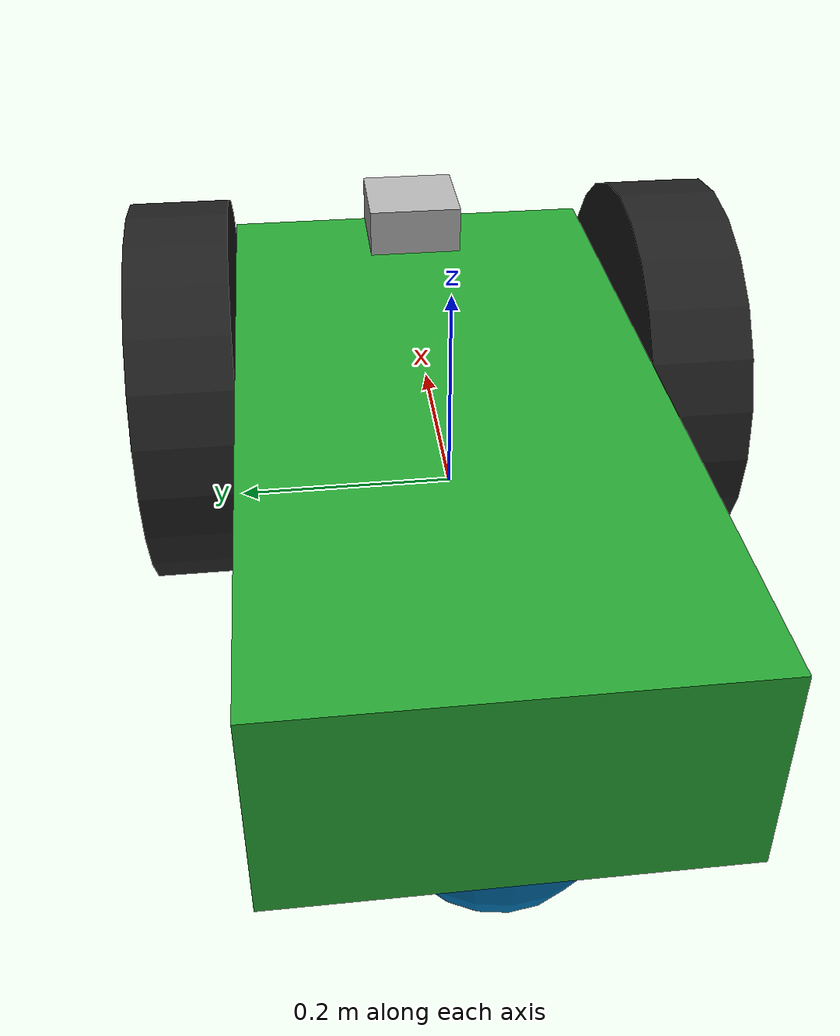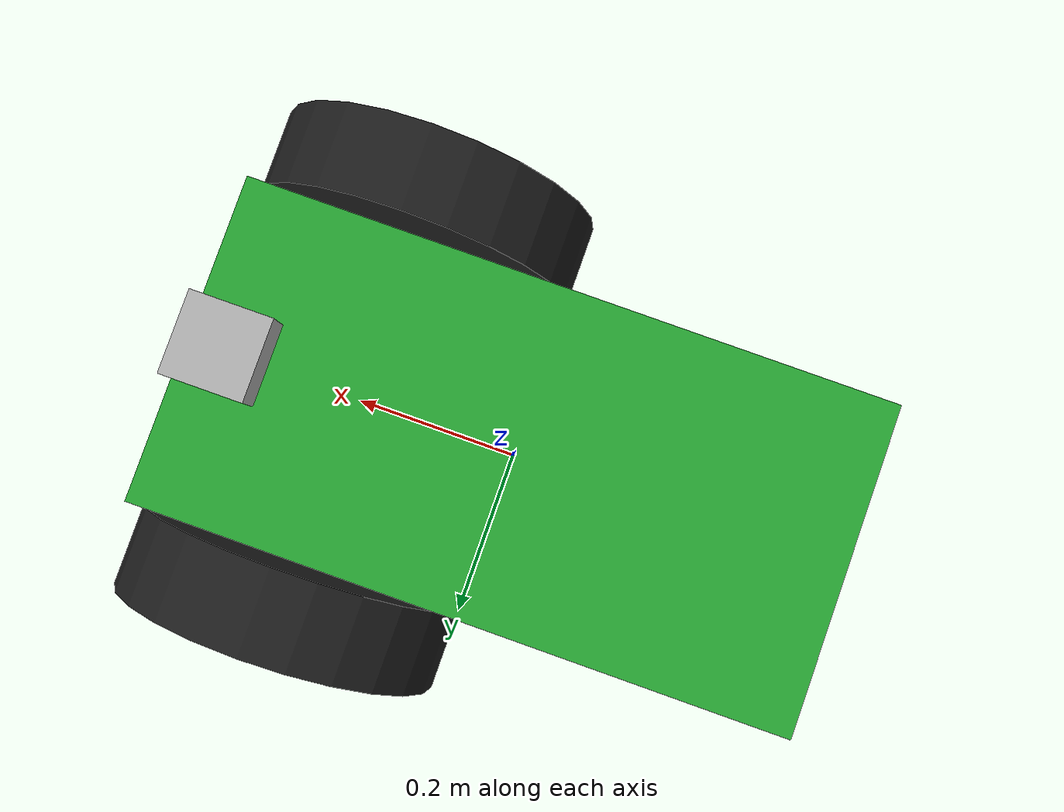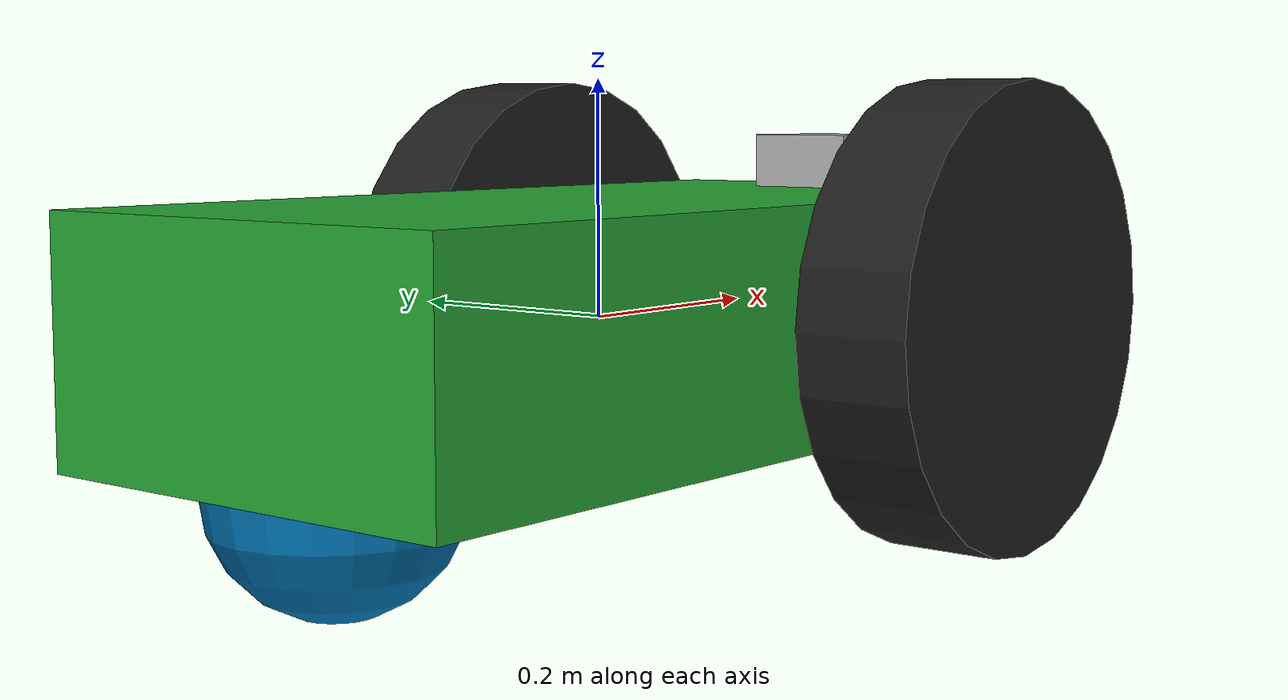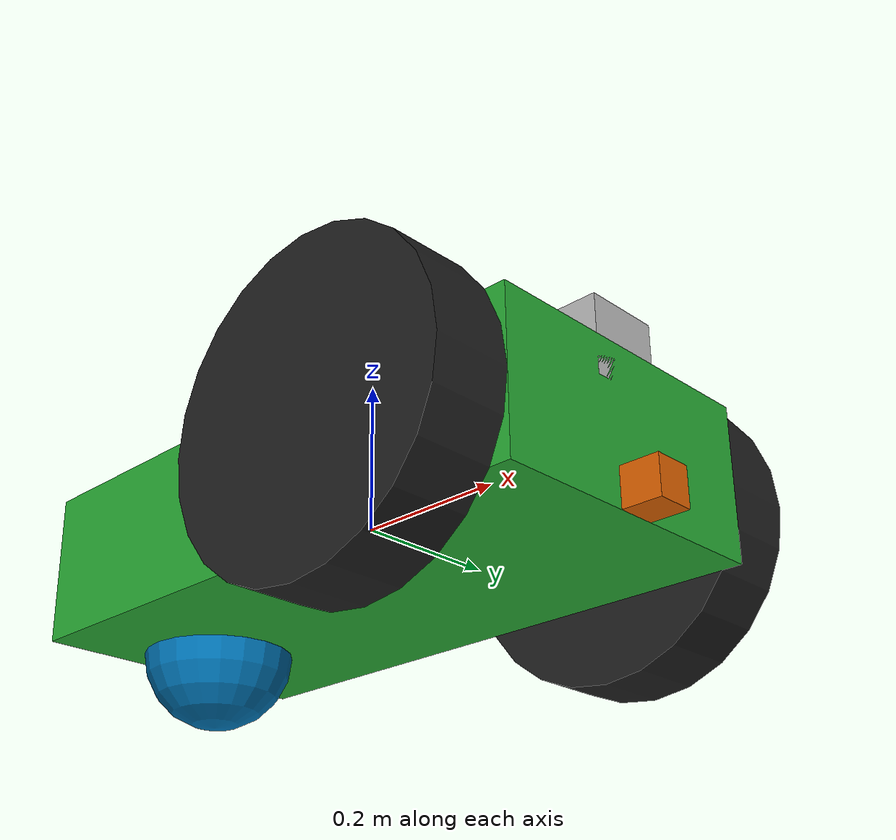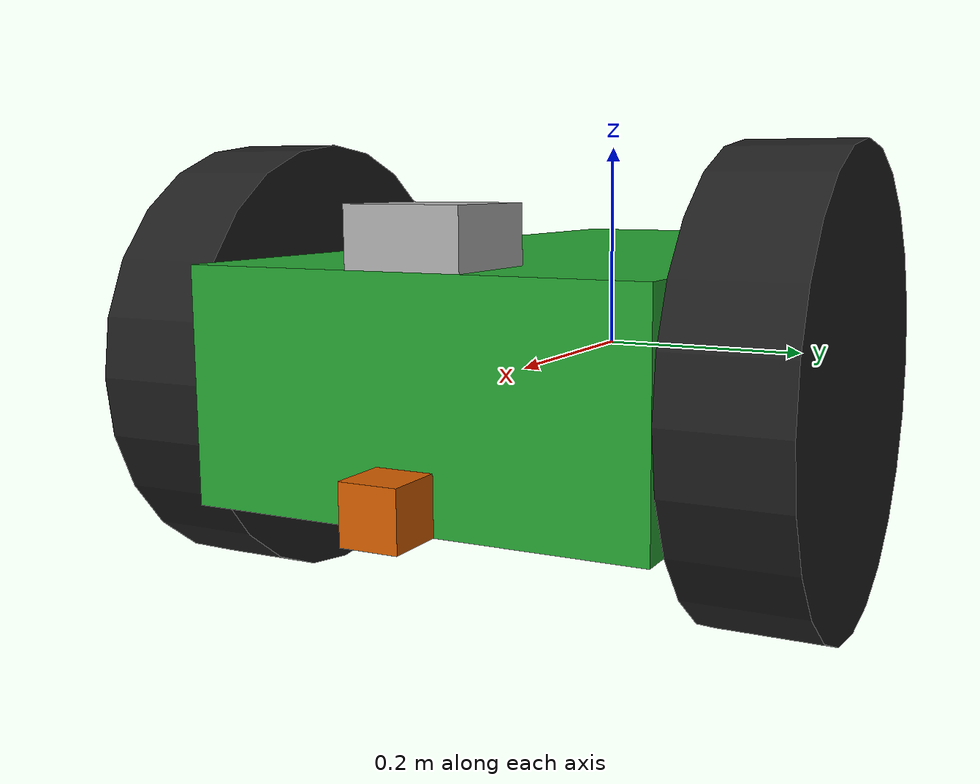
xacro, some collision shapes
<?xml version='1.0'?>

<robot name="my_robot" xmlns:xacro="http://www.ros.org/wiki/xacro">

  <!-- length width height -->
  <xacro:property name="chassis_length" value=".8" />
  <xacro:property name="chassis_width" value=".4" />
  <xacro:property name="chassis_height" value=".2" />

  <xacro:property name="chassis_size" value="${chassis_length} ${chassis_width} ${chassis_height}" />

  <xacro:property name="front_wheel_radius" value=".2" />
  <xacro:property name="front_wheel_thickness" value=".1" />
  <xacro:property name="front_wheel_x" value="${chassis_length/2 - front_wheel_radius}" />

  <xacro:property name="caster_radius" value="${front_wheel_radius - chassis_height/2}" />

  <xacro:macro name="caster_visual">
      <origin xyz="0 0 0" rpy="0 0 0"/>
      <geometry>
        <sphere radius="${caster_radius}" />
      </geometry>
  </xacro:macro>

  <xacro:property name="camera_length" value=".05" />
  <xacro:property name="camera_width" value=".05" />
  <xacro:property name="camera_height" value=".05" />

  <xacro:macro name="camera_visual">
      <origin xyz="0 0 0" rpy="0 0 0"/>
      <geometry>
          <box size="${camera_length} ${camera_width} ${camera_height}"/>
      </geometry>
  </xacro:macro>

  <xacro:include filename="$(find my_robot)/urdf/my_robot.gazebo" />

  <link name="robot_footprint"></link>

  <joint name="robot_footprint_joint" type="fixed">
    <origin xyz="0 0 0" rpy="0 0 0" />
    <parent link="robot_footprint"/>
    <child link="chassis" />
  </joint>

  <link name='chassis'>
    <pose>0 0 0.1 0 0 0</pose>

    <inertial>
      <mass value="15.0"/>
      <origin xyz="0.0 0 0" rpy=" 0 0 0"/>
      <inertia
          ixx="0.1" ixy="0" ixz="0"
          iyy="0.1" iyz="0"
          izz="0.1"
      />
    </inertial>

    <collision name='collision'>
      <origin xyz="0 0 0" rpy="0 0 0"/>
      <geometry>
        <box size="${chassis_size}"/>
      </geometry>
    </collision>

    <visual name='chassis_visual'>
      <origin xyz="0 0 0" rpy=" 0 0 0"/>
      <geometry>
        <box size="${chassis_size}"/>
      </geometry>
    </visual>
  </link>

  <link name="front_left_wheel">
    <inertial>
        <mass value="5"/>
        <origin xyz="0 0 0" rpy="0 1.5707 1.5707"/>
        <inertia
            ixx="0.1" ixy="0" ixz="0"
            iyy="0.1" iyz="0"
            izz="0.1"/>
    </inertial>

    <visual>
        <origin xyz="0 0 0" rpy="0 1.5707 1.5707"/>
        <geometry>
            <cylinder radius="${front_wheel_radius}" length="${front_wheel_thickness}"/>
        </geometry>
    </visual>

    <collision>
        <origin xyz="0 0 0" rpy="0 1.5707 1.5707"/>
        <geometry>
            <cylinder radius="${front_wheel_radius}" length="${front_wheel_thickness}"/>
        </geometry>
    </collision>
  </link>

  <link name="front_right_wheel">
    <inertial>
        <mass value="5"/>
        <origin xyz="0 0 0" rpy="0 1.5707 1.5707"/>
        <inertia
            ixx="0.1" ixy="0" ixz="0"
            iyy="0.1" iyz="0"
            izz="0.1"/>
    </inertial>

    <visual>
        <origin xyz="0 0 0" rpy="0 1.5707 1.5707"/>
        <geometry>
            <cylinder radius="${front_wheel_radius}" length="${front_wheel_thickness}"/>
        </geometry>
    </visual>

    <collision>
        <origin xyz="0 0 0" rpy="0 1.5707 1.5707"/>
        <geometry>
            <cylinder radius="${front_wheel_radius}" length="${front_wheel_thickness}"/>
        </geometry>
    </collision>
  </link>

  <link name="caster">
    <inertial>
        <mass value="0.1"/>
        <origin xyz="0 0 0" rpy="0 0 0 "/>
        <inertia
            ixx="0.1" ixy="0" ixz="0"
            iyy="0.1" iyz="0"
            izz="0.1"/>
    </inertial>

    <visual name='caster_visual'>
      <xacro:caster_visual />
    </visual>

    <collision name='caster_collision'>
      <xacro:caster_visual />
      <surface>
        <friction>
          <ode>
            <mu>0</mu>
            <mu2>0</mu2>
          </ode>
        </friction>
      </surface>
    </collision>
  </link>

  <joint type="continuous" name="front_left_wheel_hinge">
    <origin xyz="${front_wheel_x} ${chassis_width/2 + front_wheel_thickness/2} 0" rpy="0 0 0"/>
    <child link="front_left_wheel"/>
    <parent link="chassis"/>
    <axis xyz="0 1 0" rpy="0 0 0"/>
    <limit effort="10000" velocity="1000"/>
    <dynamics damping="1.0" friction="1.0"/>
  </joint>

  <joint type="continuous" name="front_right_wheel_hinge">
    <origin xyz="${front_wheel_x} ${-(chassis_width/2 + front_wheel_thickness/2)} 0" rpy="0 0 0"/>
    <child link="front_right_wheel"/>
    <parent link="chassis"/>
    <axis xyz="0 1 0" rpy="0 0 0"/>
    <limit effort="10000" velocity="1000"/>
    <dynamics damping="1.0" friction="1.0"/>
  </joint>

  <joint type="fixed" name="caster_joint">
    <origin xyz="${-chassis_length/2 + caster_radius} 0 ${-chassis_height/2}" rpy="0 0 0"/>
    <child link="caster"/>
    <parent link="chassis"/>
  </joint>

  <link name="camera_link">
    <inertial>
        <mass value="0.1"/>
        <origin xyz="0 0 0" rpy="0 0 0"/>
        <inertia
            ixx="1e-6" ixy="0" ixz="0"
            iyy="1e-6" iyz="0" izz="1e-6"/>
        <box_inertia
            m="0.1" x="0.05" y="0.05" z="0.05"/>
    </inertial>

    <visual>
        <xacro:camera_visual />
    </visual>

    <collision>
        <xacro:camera_visual />
    </collision>
  </link>

  <joint type="fixed" name="camera_joint">
    <origin xyz="${chassis_length/2 + camera_length/2} 0 ${-chassis_height/2 + camera_height/2}" rpy="0 0 0"/>
    <axis xyz="0 1 0" rpy="0 0 0"/>
    <parent link="chassis"/>
    <child link="camera_link"/>
  </joint>

  <joint name="camera_optical_joint" type="fixed">
    <origin xyz="0 0 0" rpy="-1.5707 0 -1.5707"/>
    <parent link="camera_link"/>
    <child link="camera_link_optical"/>
  </joint>

  <link name="camera_link_optical">
  </link>

  <link name="hokuyo">
    <inertial>
        <mass value="1e-5"/>
        <origin xyz="0 0 0" rpy="0 0 0"/>
        <inertia
            ixx="1e-6" ixy="0" ixz="0"
            iyy="1e-6" iyz="0" izz="1e-6"/>
    </inertial>

    <visual>
        <origin xyz="0 0 0" rpy="0 0 0"/>
        <geometry>
            <mesh filename="package://my_robot/meshes/hokuyo.dae"/>
        </geometry>
    </visual>

    <collision>
        <origin xyz="0 0 0" rpy="0 0 0"/>
        <geometry>
            <box size="0.1 0.1 0.1"/>
        </geometry>
    </collision>
  </link>

  <joint type="fixed" name="hokuyo_joint">
    <origin xyz="${chassis_length/2 - 0.05} 0 ${chassis_height/2}" rpy="0 0 0"/>
    <axis xyz="0 1 0" rpy="0 0 0"/>
    <parent link="chassis"/>
    <child link="hokuyo"/>
  </joint>

  <gazebo reference="chassis">
      <material>Gazebo/Green</material>
  </gazebo>

  <gazebo reference="front_left_wheel">
      <material>Gazebo/Black</material>
  </gazebo>

  <gazebo reference="front_right_wheel">
      <material>Gazebo/Black</material>
  </gazebo>

</robot>
